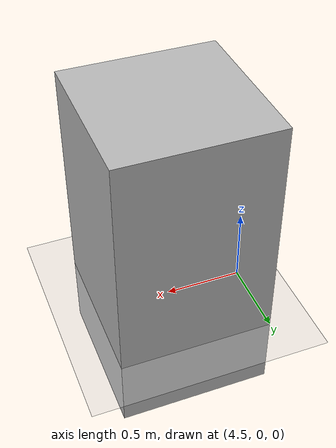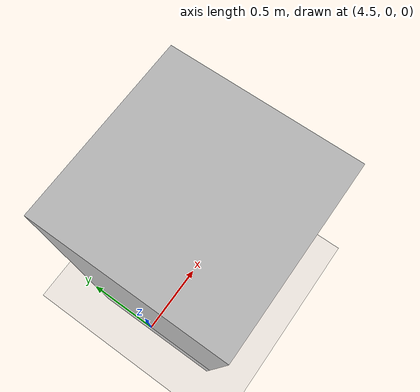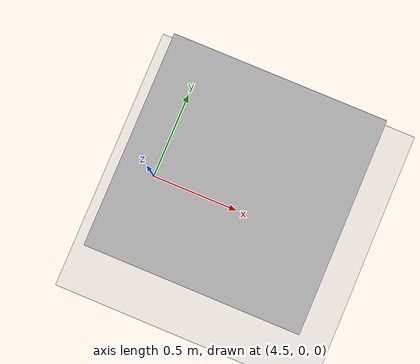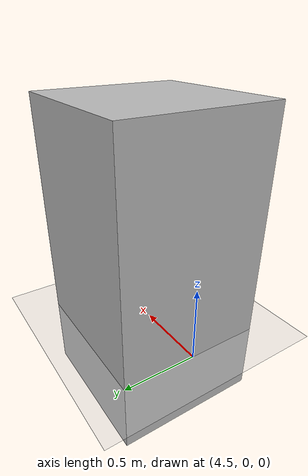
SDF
<?xml version="1.0"?>

<sdf version="1.6">
    <world name="world_with_boxes">
        <physics name="4ms" type="ignored">
            <max_step_size>0.004</max_step_size>
            <real_time_factor>1.0</real_time_factor>
        </physics>
        <plugin
            filename="ignition-gazebo-physics-system"
            name="ignition::gazebo::systems::Physics">
        </plugin>
        <plugin
            filename="ignition-gazebo-scene-broadcaster-system"
            name="ignition::gazebo::systems::SceneBroadcaster">
        </plugin>
        <plugin
            filename="ignition-gazebo-user-commands-system"
            name="ignition::gazebo::systems::UserCommands">
        </plugin>
        <plugin
            filename="ignition-gazebo-sensors-system"
            name="ignition::gazebo::systems::Sensors">
            <render_engine>ogre2</render_engine>
        </plugin>
        <plugin
            filename="ignition-gazebo-contact-system"
            name="ignition::gazebo::systems::Contact">
        </plugin>

        <include>
            <uri>model://ground_plane</uri>
        </include>

        <include>
            <uri>model://box</uri>
            <pose>5 0 0.5 0 0 0</pose>
        </include>
    </world>
</sdf>

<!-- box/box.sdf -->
<sdf version="1.8">
    <model name="box">
        <pose>0 0 0.5 0 0 0</pose>
        <static>1</static>

        <link name="box_link">
            <inertial>
                <inertia>
                    <ixx>1</ixx>
                    <ixy>0</ixy>
                    <ixz>0</ixz>
                    <iyy>1</iyy>
                    <iyz>0</iyz>
                    <izz>1</izz>
                </inertia>
                <mass>1.0</mass>
            </inertial>

            <collision name="collision">
                <geometry>
                    <box>
                        <size>1 1 2</size>
                    </box>
                </geometry>
            </collision>

            <visual name="visual">
                <geometry>
                    <box>
                        <size>1 1 2</size>
                    </box>
                </geometry>
            </visual>
        </link>

        <joint name="world_to_box_joint" type="fixed">
            <parent>world</parent>
            <child>box_link</child>
        </joint>
  </model>
</sdf>
